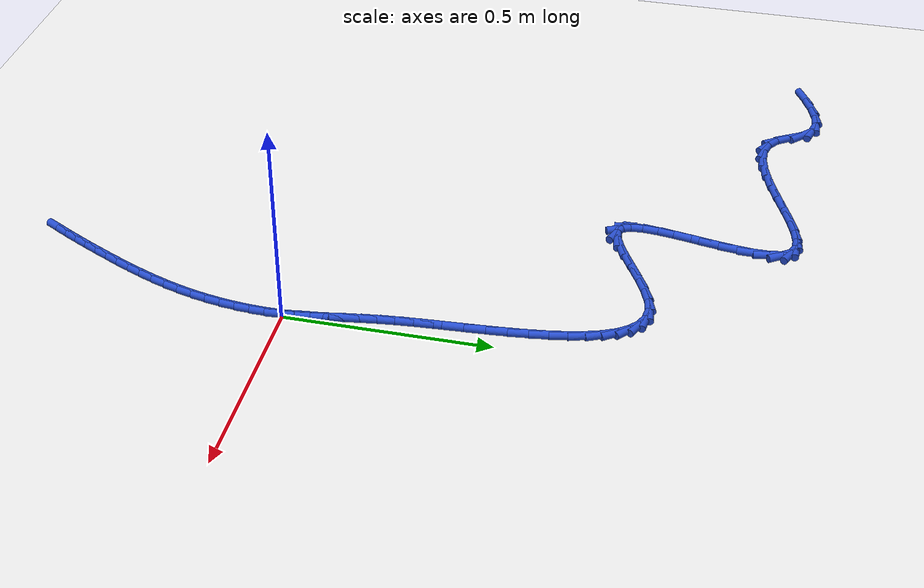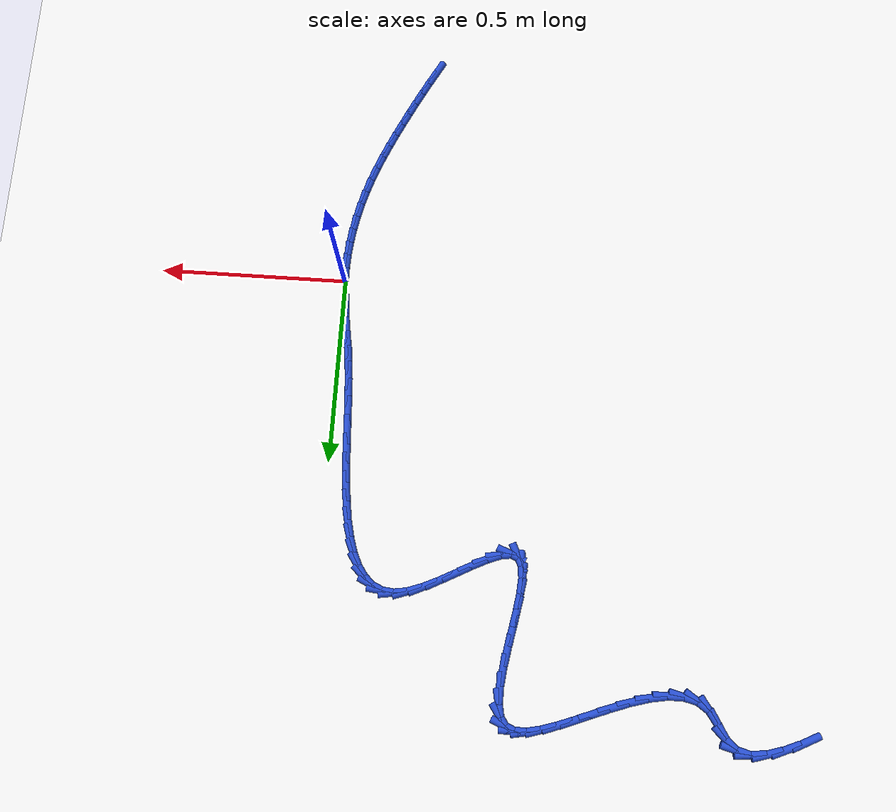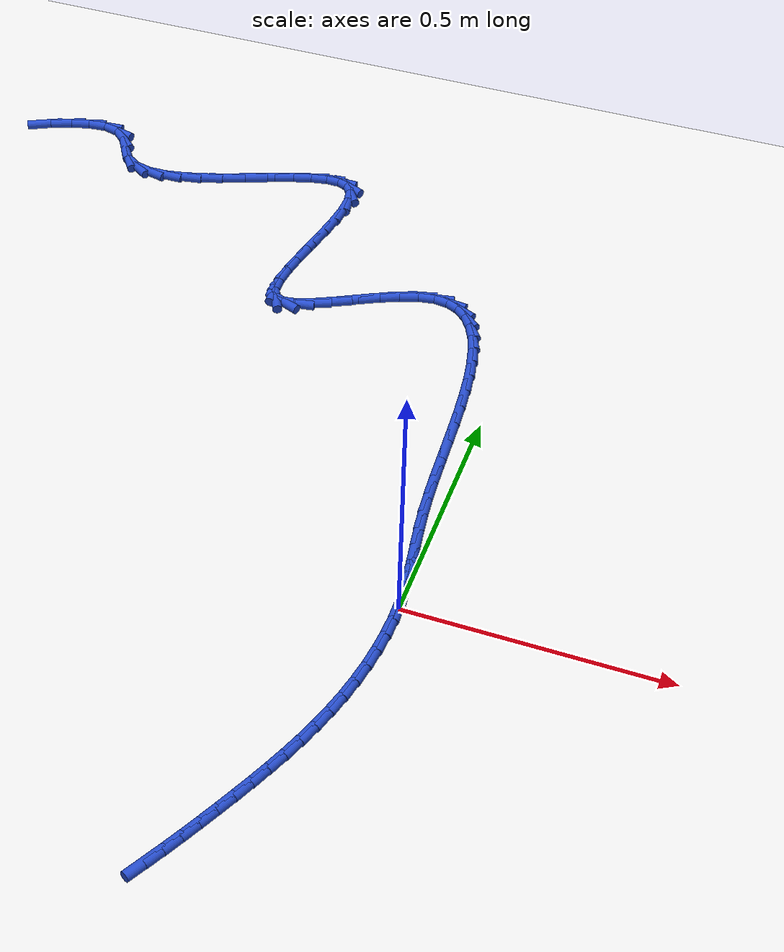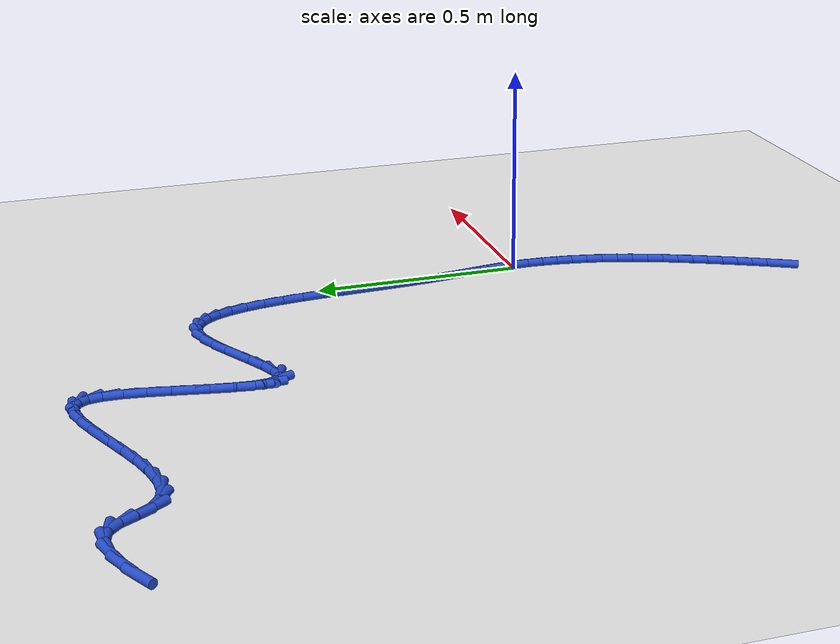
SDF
<sdf version="1.6">
 <world name="default">
  <model name="ground_plane">
   <static>1</static>
   <link name="link">
    <collision name="collision">
     <geometry><plane><normal>0 0 1</normal><size>100 100</size></plane></geometry>
     <surface><friction><ode><mu>100</mu><mu2>50</mu2></ode></friction></surface>
    </collision>
    <visual name="visual">
     <cast_shadows>0</cast_shadows>
     <geometry><plane><normal>0 0 1</normal><size>100 100</size></plane></geometry>
     <material>
      <script><uri>file://media/materials/scripts/gazebo.material</uri><name>Gazebo/WhiteGlow</name></script>
     </material>
    </visual>
   </link>
  </model>
  <model name="line">
   <link name="link_0">
    <pose>-6.938893903907228e-18 1.3877787807814457e-17 0.01 0 1.57 -1.5029490095891989</pose>
    <collision name="collision">
     <geometry><cylinder><radius>0.01</radius><length>0.08</length></cylinder></geometry>
    </collision>
    <visual name="visual">
     <material>
      <script><name>Gazebo/Blue</name><uri>file://media/materials/scripts/gazebo.material</uri></script>
     </material>
     <geometry><cylinder><radius>0.01</radius><length>0.08</length></cylinder></geometry>
    </visual>
   </link>
   <link name="link_1">
    <pose>-0.0024324294258575665 0.035796491488146266 0.01 0 1.57 -1.4581747163771437</pose>
    <collision name="collision">
     <geometry><cylinder><radius>0.01</radius><length>0.08</length></cylinder></geometry>
    </collision>
    <visual name="visual">
     <material>
      <script><name>Gazebo/Blue</name><uri>file://media/materials/scripts/gazebo.material</uri></script>
     </material>
     <geometry><cylinder><radius>0.01</radius><length>0.08</length></cylinder></geometry>
    </visual>
   </link>
   <link name="link_2">
    <pose>-0.006441925883441868 0.07124732937667558 0.01 0 1.57 -1.4291554986315413</pose>
    <collision name="collision">
     <geometry><cylinder><radius>0.01</radius><length>0.08</length></cylinder></geometry>
    </collision>
    <visual name="visual">
     <material>
      <script><name>Gazebo/Blue</name><uri>file://media/materials/scripts/gazebo.material</uri></script>
     </material>
     <geometry><cylinder><radius>0.01</radius><length>0.08</length></cylinder></geometry>
    </visual>
   </link>
   <link name="link_3">
    <pose>-0.01154123499219159 0.10700793941399644 0.01 0 1.57 -1.4167709639370885</pose>
    <collision name="collision">
     <geometry><cylinder><radius>0.01</radius><length>0.08</length></cylinder></geometry>
    </collision>
    <visual name="visual">
     <material>
      <script><name>Gazebo/Blue</name><uri>file://media/materials/scripts/gazebo.material</uri></script>
     </material>
     <geometry><cylinder><radius>0.01</radius><length>0.08</length></cylinder></geometry>
    </visual>
   </link>
   <link name="link_4">
    <pose>-0.01724310237154544 0.14373374734851743 0.01 0 1.57 -1.420243754941917</pose>
    <collision name="collision">
     <geometry><cylinder><radius>0.01</radius><length>0.08</length></cylinder></geometry>
    </collision>
    <visual name="visual">
     <material>
      <script><name>Gazebo/Blue</name><uri>file://media/materials/scripts/gazebo.material</uri></script>
     </material>
     <geometry><cylinder><radius>0.01</radius><length>0.08</length></cylinder></geometry>
    </visual>
   </link>
   <link name="link_5">
    <pose>-0.0230602736409421 0.18208017892864706 0.01 0 1.57 -1.4375460999784744</pose>
    <collision name="collision">
     <geometry><cylinder><radius>0.01</radius><length>0.08</length></cylinder></geometry>
    </collision>
    <visual name="visual">
     <material>
      <script><name>Gazebo/Blue</name><uri>file://media/materials/scripts/gazebo.material</uri></script>
     </material>
     <geometry><cylinder><radius>0.01</radius><length>0.08</length></cylinder></geometry>
    </visual>
   </link>
   <link name="link_6">
    <pose>-0.028505494419820247 0.22270265990279367 0.01 0 1.57 -1.4656498363338808</pose>
    <collision name="collision">
     <geometry><cylinder><radius>0.01</radius><length>0.08</length></cylinder></geometry>
    </collision>
    <visual name="visual">
     <material>
      <script><name>Gazebo/Blue</name><uri>file://media/materials/scripts/gazebo.material</uri></script>
     </material>
     <geometry><cylinder><radius>0.01</radius><length>0.08</length></cylinder></geometry>
    </visual>
   </link>
   <link name="link_7">
    <pose>-0.03310041205159639 0.2662416467459656 0.01 0 1.57 -1.493004079329774</pose>
    <collision name="collision">
     <geometry><cylinder><radius>0.01</radius><length>0.08</length></cylinder></geometry>
    </collision>
    <visual name="visual">
     <material>
      <script><name>Gazebo/Blue</name><uri>file://media/materials/scripts/gazebo.material</uri></script>
     </material>
     <geometry><cylinder><radius>0.01</radius><length>0.08</length></cylinder></geometry>
    </visual>
   </link>
   <link name="link_8">
    <pose>-0.0367246024848403 0.31273569778830096 0.01 0 1.57 -1.5091628321506347</pose>
    <collision name="collision">
     <geometry><cylinder><radius>0.01</radius><length>0.08</length></cylinder></geometry>
    </collision>
    <visual name="visual">
     <material>
      <script><name>Gazebo/Blue</name><uri>file://media/materials/scripts/gazebo.material</uri></script>
     </material>
     <geometry><cylinder><radius>0.01</radius><length>0.08</length></cylinder></geometry>
    </visual>
   </link>
   <link name="link_9">
    <pose>-0.0397295919868771 0.36142973258047373 0.01 0 1.57 -1.5155548807561852</pose>
    <collision name="collision">
     <geometry><cylinder><radius>0.01</radius><length>0.08</length></cylinder></geometry>
    </collision>
    <visual name="visual">
     <material>
      <script><name>Gazebo/Blue</name><uri>file://media/materials/scripts/gazebo.material</uri></script>
     </material>
     <geometry><cylinder><radius>0.01</radius><length>0.08</length></cylinder></geometry>
    </visual>
   </link>
   <link name="link_10">
    <pose>-0.042499160980004204 0.41151443159932294 0.01 0 1.57 -1.513268462693427</pose>
    <collision name="collision">
     <geometry><cylinder><radius>0.01</radius><length>0.08</length></cylinder></geometry>
    </collision>
    <visual name="visual">
     <material>
      <script><name>Gazebo/Blue</name><uri>file://media/materials/scripts/gazebo.material</uri></script>
     </material>
     <geometry><cylinder><radius>0.01</radius><length>0.08</length></cylinder></geometry>
    </visual>
   </link>
   <link name="link_11">
    <pose>-0.045417089886519005 0.4621804753216886 0.01 0 1.57 -1.5025006209556657</pose>
    <collision name="collision">
     <geometry><cylinder><radius>0.01</radius><length>0.08</length></cylinder></geometry>
    </collision>
    <visual name="visual">
     <material>
      <script><name>Gazebo/Blue</name><uri>file://media/materials/scripts/gazebo.material</uri></script>
     </material>
     <geometry><cylinder><radius>0.01</radius><length>0.08</length></cylinder></geometry>
    </visual>
   </link>
   <link name="link_12">
    <pose>-0.04886715912871897 0.5126185442244102 0.01 0 1.57 -1.4826463805374432</pose>
    <collision name="collision">
     <geometry><cylinder><radius>0.01</radius><length>0.08</length></cylinder></geometry>
    </collision>
    <visual name="visual">
     <material>
      <script><name>Gazebo/Blue</name><uri>file://media/materials/scripts/gazebo.material</uri></script>
     </material>
     <geometry><cylinder><radius>0.01</radius><length>0.08</length></cylinder></geometry>
    </visual>
   </link>
   <link name="link_13">
    <pose>-0.05323314912890154 0.5620193187843275 0.01 0 1.57 -1.452213444151717</pose>
    <collision name="collision">
     <geometry><cylinder><radius>0.01</radius><length>0.08</length></cylinder></geometry>
    </collision>
    <visual name="visual">
     <material>
      <script><name>Gazebo/Blue</name><uri>file://media/materials/scripts/gazebo.material</uri></script>
     </material>
     <geometry><cylinder><radius>0.01</radius><length>0.08</length></cylinder></geometry>
    </visual>
   </link>
   <link name="link_14">
    <pose>-0.05889884030936408 0.6095734794782794 0.01 0 1.57 -1.4085499858642958</pose>
    <collision name="collision">
     <geometry><cylinder><radius>0.01</radius><length>0.08</length></cylinder></geometry>
    </collision>
    <visual name="visual">
     <material>
      <script><name>Gazebo/Blue</name><uri>file://media/materials/scripts/gazebo.material</uri></script>
     </material>
     <geometry><cylinder><radius>0.01</radius><length>0.08</length></cylinder></geometry>
    </visual>
   </link>
   <link name="link_15">
    <pose>-0.0662480130924041 0.6544717067831065 0.01 0 1.57 -1.347323174603074</pose>
    <collision name="collision">
     <geometry><cylinder><radius>0.01</radius><length>0.08</length></cylinder></geometry>
    </collision>
    <visual name="visual">
     <material>
      <script><name>Gazebo/Blue</name><uri>file://media/materials/scripts/gazebo.material</uri></script>
     </material>
     <geometry><cylinder><radius>0.01</radius><length>0.08</length></cylinder></geometry>
    </visual>
   </link>
   <link name="link_16">
    <pose>-0.075664447900319 0.6959046811756477 0.01 0 1.57 -1.2616601214778005</pose>
    <collision name="collision">
     <geometry><cylinder><radius>0.01</radius><length>0.08</length></cylinder></geometry>
    </collision>
    <visual name="visual">
     <material>
      <script><name>Gazebo/Blue</name><uri>file://media/materials/scripts/gazebo.material</uri></script>
     </material>
     <geometry><cylinder><radius>0.01</radius><length>0.08</length></cylinder></geometry>
    </visual>
   </link>
   <link name="link_17">
    <pose>-0.08753192515540617 0.7330630831327426 0.01 0 1.57 -1.1409958378339469</pose>
    <collision name="collision">
     <geometry><cylinder><radius>0.01</radius><length>0.08</length></cylinder></geometry>
    </collision>
    <visual name="visual">
     <material>
      <script><name>Gazebo/Blue</name><uri>file://media/materials/scripts/gazebo.material</uri></script>
     </material>
     <geometry><cylinder><radius>0.01</radius><length>0.08</length></cylinder></geometry>
    </visual>
   </link>
   <link name="link_18">
    <pose>-0.10223422527996309 0.7651375931312314 0.01 0 1.57 -0.9705540528261299</pose>
    <collision name="collision">
     <geometry><cylinder><radius>0.01</radius><length>0.08</length></cylinder></geometry>
    </collision>
    <visual name="visual">
     <material>
      <script><name>Gazebo/Blue</name><uri>file://media/materials/scripts/gazebo.material</uri></script>
     </material>
     <geometry><cylinder><radius>0.01</radius><length>0.08</length></cylinder></geometry>
    </visual>
   </link>
   <link name="link_19">
    <pose>-0.12015512869628711 0.7913188916479525 0.01 0 1.57 -0.7355755957059619</pose>
    <collision name="collision">
     <geometry><cylinder><radius>0.01</radius><length>0.08</length></cylinder></geometry>
    </collision>
    <visual name="visual">
     <material>
      <script><name>Gazebo/Blue</name><uri>file://media/materials/scripts/gazebo.material</uri></script>
     </material>
     <geometry><cylinder><radius>0.01</radius><length>0.08</length></cylinder></geometry>
    </visual>
   </link>
   <link name="link_20">
    <pose>-0.14167841582667579 0.8107976591597468 0.01 0 1.57 -0.4386373959741869</pose>
    <collision name="collision">
     <geometry><cylinder><radius>0.01</radius><length>0.08</length></cylinder></geometry>
    </collision>
    <visual name="visual">
     <material>
      <script><name>Gazebo/Blue</name><uri>file://media/materials/scripts/gazebo.material</uri></script>
     </material>
     <geometry><cylinder><radius>0.01</radius><length>0.08</length></cylinder></geometry>
    </visual>
   </link>
   <link name="link_21">
    <pose>-0.16718786709342648 0.8227645761434532 0.01 0 1.57 -0.12141525651706091</pose>
    <collision name="collision">
     <geometry><cylinder><radius>0.01</radius><length>0.08</length></cylinder></geometry>
    </collision>
    <visual name="visual">
     <material>
      <script><name>Gazebo/Blue</name><uri>file://media/materials/scripts/gazebo.material</uri></script>
     </material>
     <geometry><cylinder><radius>0.01</radius><length>0.08</length></cylinder></geometry>
    </visual>
   </link>
   <link name="link_22">
    <pose>-0.19706726291883653 0.8264103230759113 0.01 0 1.57 0.15551919759422433</pose>
    <collision name="collision">
     <geometry><cylinder><radius>0.01</radius><length>0.08</length></cylinder></geometry>
    </collision>
    <visual name="visual">
     <material>
      <script><name>Gazebo/Blue</name><uri>file://media/materials/scripts/gazebo.material</uri></script>
     </material>
     <geometry><cylinder><radius>0.01</radius><length>0.08</length></cylinder></geometry>
    </visual>
   </link>
   <link name="link_23">
    <pose>-0.23166478676584346 0.820985941488289 0.01 0 1.57 0.33773264753974835</pose>
    <collision name="collision">
     <geometry><cylinder><radius>0.01</radius><length>0.08</length></cylinder></geometry>
    </collision>
    <visual name="visual">
     <material>
      <script><name>Gazebo/Blue</name><uri>file://media/materials/scripts/gazebo.material</uri></script>
     </material>
     <geometry><cylinder><radius>0.01</radius><length>0.08</length></cylinder></geometry>
    </visual>
   </link>
   <link name="link_24">
    <pose>-0.2703512929469173 0.8073997104682087 0.01 0 1.57 0.43364230961249856</pose>
    <collision name="collision">
     <geometry><cylinder><radius>0.01</radius><length>0.08</length></cylinder></geometry>
    </collision>
    <visual name="visual">
     <material>
      <script><name>Gazebo/Blue</name><uri>file://media/materials/scripts/gazebo.material</uri></script>
     </material>
     <geometry><cylinder><radius>0.01</radius><length>0.08</length></cylinder></geometry>
    </visual>
   </link>
   <link name="link_25">
    <pose>-0.3114231217208325 0.7883819411626845 0.01 0 1.57 0.4784316106165716</pose>
    <collision name="collision">
     <geometry><cylinder><radius>0.01</radius><length>0.08</length></cylinder></geometry>
    </collision>
    <visual name="visual">
     <material>
      <script><name>Gazebo/Blue</name><uri>file://media/materials/scripts/gazebo.material</uri></script>
     </material>
     <geometry><cylinder><radius>0.01</radius><length>0.08</length></cylinder></geometry>
    </visual>
   </link>
   <link name="link_26">
    <pose>-0.3531215246306627 0.7667563575556949 0.01 0 1.57 0.4856166937264182</pose>
    <collision name="collision">
     <geometry><cylinder><radius>0.01</radius><length>0.08</length></cylinder></geometry>
    </collision>
    <visual name="visual">
     <material>
      <script><name>Gazebo/Blue</name><uri>file://media/materials/scripts/gazebo.material</uri></script>
     </material>
     <geometry><cylinder><radius>0.01</radius><length>0.08</length></cylinder></geometry>
    </visual>
   </link>
   <link name="link_27">
    <pose>-0.39368775321948135 0.7453466836312201 0.01 0 1.57 0.4536690798772381</pose>
    <collision name="collision">
     <geometry><cylinder><radius>0.01</radius><length>0.08</length></cylinder></geometry>
    </collision>
    <visual name="visual">
     <material>
      <script><name>Gazebo/Blue</name><uri>file://media/materials/scripts/gazebo.material</uri></script>
     </material>
     <geometry><cylinder><radius>0.01</radius><length>0.08</length></cylinder></geometry>
    </visual>
   </link>
   <link name="link_28">
    <pose>-0.43136305903036304 0.7269766433732396 0.01 0 1.57 0.3620072377387617</pose>
    <collision name="collision">
     <geometry><cylinder><radius>0.01</radius><length>0.08</length></cylinder></geometry>
    </collision>
    <visual name="visual">
     <material>
      <script><name>Gazebo/Blue</name><uri>file://media/materials/scripts/gazebo.material</uri></script>
     </material>
     <geometry><cylinder><radius>0.01</radius><length>0.08</length></cylinder></geometry>
    </visual>
   </link>
   <link name="link_29">
    <pose>-0.46438869360638063 0.7144699607657328 0.01 0 1.57 0.14252812563000053</pose>
    <collision name="collision">
     <geometry><cylinder><radius>0.01</radius><length>0.08</length></cylinder></geometry>
    </collision>
    <visual name="visual">
     <material>
      <script><name>Gazebo/Blue</name><uri>file://media/materials/scripts/gazebo.material</uri></script>
     </material>
     <geometry><cylinder><radius>0.01</radius><length>0.08</length></cylinder></geometry>
    </visual>
   </link>
   <link name="link_30">
    <pose>-0.49100590849060816 0.7106503597926793 0.01 0 1.57 -0.3937129141649056</pose>
    <collision name="collision">
     <geometry><cylinder><radius>0.01</radius><length>0.08</length></cylinder></geometry>
    </collision>
    <visual name="visual">
     <material>
      <script><name>Gazebo/Blue</name><uri>file://media/materials/scripts/gazebo.material</uri></script>
     </material>
     <geometry><cylinder><radius>0.01</radius><length>0.08</length></cylinder></geometry>
    </visual>
   </link>
   <link name="link_31">
    <pose>-0.5094701226348705 0.7183204283298726 0.01 0 1.57 -1.1211510820049249</pose>
    <collision name="collision">
     <geometry><cylinder><radius>0.01</radius><length>0.08</length></cylinder></geometry>
    </collision>
    <visual name="visual">
     <material>
      <script><name>Gazebo/Blue</name><uri>file://media/materials/scripts/gazebo.material</uri></script>
     </material>
     <geometry><cylinder><radius>0.01</radius><length>0.08</length></cylinder></geometry>
    </visual>
   </link>
   <link name="link_32">
    <pose>-0.5192185936477617 0.7385195899265792 0.01 0 1.57 -1.4887960989691764</pose>
    <collision name="collision">
     <geometry><cylinder><radius>0.01</radius><length>0.08</length></cylinder></geometry>
    </collision>
    <visual name="visual">
     <material>
      <script><name>Gazebo/Blue</name><uri>file://media/materials/scripts/gazebo.material</uri></script>
     </material>
     <geometry><cylinder><radius>0.01</radius><length>0.08</length></cylinder></geometry>
    </visual>
   </link>
   <link name="link_33">
    <pose>-0.521742004190373 0.7692237993759778 0.01 0 1.57 1.4936423378329293</pose>
    <collision name="collision">
     <geometry><cylinder><radius>0.01</radius><length>0.08</length></cylinder></geometry>
    </collision>
    <visual name="visual">
     <material>
      <script><name>Gazebo/Blue</name><uri>file://media/materials/scripts/gazebo.material</uri></script>
     </material>
     <geometry><cylinder><radius>0.01</radius><length>0.08</length></cylinder></geometry>
    </visual>
   </link>
   <link name="link_34">
    <pose>-0.518736378246912 0.8081026663592397 0.01 0 1.57 1.4190611112322715</pose>
    <collision name="collision">
     <geometry><cylinder><radius>0.01</radius><length>0.08</length></cylinder></geometry>
    </collision>
    <visual name="visual">
     <material>
      <script><name>Gazebo/Blue</name><uri>file://media/materials/scripts/gazebo.material</uri></script>
     </material>
     <geometry><cylinder><radius>0.01</radius><length>0.08</length></cylinder></geometry>
    </visual>
   </link>
   <link name="link_35">
    <pose>-0.5118977398015865 0.8528258005575355 0.01 0 1.57 1.38682683542851</pose>
    <collision name="collision">
     <geometry><cylinder><radius>0.01</radius><length>0.08</length></cylinder></geometry>
    </collision>
    <visual name="visual">
     <material>
      <script><name>Gazebo/Blue</name><uri>file://media/materials/scripts/gazebo.material</uri></script>
     </material>
     <geometry><cylinder><radius>0.01</radius><length>0.08</length></cylinder></geometry>
    </visual>
   </link>
   <link name="link_36">
    <pose>-0.502922112838605 0.9010628116520373 0.01 0 1.57 1.3825130540014907</pose>
    <collision name="collision">
     <geometry><cylinder><radius>0.01</radius><length>0.08</length></cylinder></geometry>
    </collision>
    <visual name="visual">
     <material>
      <script><name>Gazebo/Blue</name><uri>file://media/materials/scripts/gazebo.material</uri></script>
     </material>
     <geometry><cylinder><radius>0.01</radius><length>0.08</length></cylinder></geometry>
    </visual>
   </link>
   <link name="link_37">
    <pose>-0.4935055213421753 0.9504833093239153 0.01 0 1.57 1.4033118876343589</pose>
    <collision name="collision">
     <geometry><cylinder><radius>0.01</radius><length>0.08</length></cylinder></geometry>
    </collision>
    <visual name="visual">
     <material>
      <script><name>Gazebo/Blue</name><uri>file://media/materials/scripts/gazebo.material</uri></script>
     </material>
     <geometry><cylinder><radius>0.01</radius><length>0.08</length></cylinder></geometry>
    </visual>
   </link>
   <link name="link_38">
    <pose>-0.48534398929650524 0.9987569032543417 0.01 0 1.57 1.455002385339137</pose>
    <collision name="collision">
     <geometry><cylinder><radius>0.01</radius><length>0.08</length></cylinder></geometry>
    </collision>
    <visual name="visual">
     <material>
      <script><name>Gazebo/Blue</name><uri>file://media/materials/scripts/gazebo.material</uri></script>
     </material>
     <geometry><cylinder><radius>0.01</radius><length>0.08</length></cylinder></geometry>
    </visual>
   </link>
   <link name="link_39">
    <pose>-0.48013354068580283 1.0435532031244874 0.01 0 1.57 1.5563484684523539</pose>
    <collision name="collision">
     <geometry><cylinder><radius>0.01</radius><length>0.08</length></cylinder></geometry>
    </collision>
    <visual name="visual">
     <material>
      <script><name>Gazebo/Blue</name><uri>file://media/materials/scripts/gazebo.material</uri></script>
     </material>
     <geometry><cylinder><radius>0.01</radius><length>0.08</length></cylinder></geometry>
    </visual>
   </link>
   <link name="link_40">
    <pose>-0.4795701994942762 1.0825418186155233 0.01 0 1.57 -1.385595121645287</pose>
    <collision name="collision">
     <geometry><cylinder><radius>0.01</radius><length>0.08</length></cylinder></geometry>
    </collision>
    <visual name="visual">
     <material>
      <script><name>Gazebo/Blue</name><uri>file://media/materials/scripts/gazebo.material</uri></script>
     </material>
     <geometry><cylinder><radius>0.01</radius><length>0.08</length></cylinder></geometry>
    </visual>
   </link>
   <link name="link_41">
    <pose>-0.48534998970613336 1.113392359408621 0.01 0 1.57 -0.9777811911724729</pose>
    <collision name="collision">
     <geometry><cylinder><radius>0.01</radius><length>0.08</length></cylinder></geometry>
    </collision>
    <visual name="visual">
     <material>
      <script><name>Gazebo/Blue</name><uri>file://media/materials/scripts/gazebo.material</uri></script>
     </material>
     <geometry><cylinder><radius>0.01</radius><length>0.08</length></cylinder></geometry>
    </visual>
   </link>
   <link name="link_42">
    <pose>-0.49912662661353785 1.1338345563181706 0.01 0 1.57 -0.4091905115053014</pose>
    <collision name="collision">
     <geometry><cylinder><radius>0.01</radius><length>0.08</length></cylinder></geometry>
    </collision>
    <visual name="visual">
     <material>
      <script><name>Gazebo/Blue</name><uri>file://media/materials/scripts/gazebo.material</uri></script>
     </material>
     <geometry><cylinder><radius>0.01</radius><length>0.08</length></cylinder></geometry>
    </visual>
   </link>
   <link name="link_43">
    <pose>-0.5212619214378263 1.1434339505557993 0.01 0 1.57 -0.015383986659590978</pose>
    <collision name="collision">
     <geometry><cylinder><radius>0.01</radius><length>0.08</length></cylinder></geometry>
    </collision>
    <visual name="visual">
     <material>
      <script><name>Gazebo/Blue</name><uri>file://media/materials/scripts/gazebo.material</uri></script>
     </material>
     <geometry><cylinder><radius>0.01</radius><length>0.08</length></cylinder></geometry>
    </visual>
   </link>
   <link name="link_44">
    <pose>-0.5506190816360831 1.1438856163486846 0.01 0 1.57 0.19222493038312605</pose>
    <collision name="collision">
     <geometry><cylinder><radius>0.01</radius><length>0.08</length></cylinder></geometry>
    </collision>
    <visual name="visual">
     <material>
      <script><name>Gazebo/Blue</name><uri>file://media/materials/scripts/gazebo.material</uri></script>
     </material>
     <geometry><cylinder><radius>0.01</radius><length>0.08</length></cylinder></geometry>
    </visual>
   </link>
   <link name="link_45">
    <pose>-0.5859773803668158 1.1370038995181515 0.01 0 1.57 0.29964514804853004</pose>
    <collision name="collision">
     <geometry><cylinder><radius>0.01</radius><length>0.08</length></cylinder></geometry>
    </collision>
    <visual name="visual">
     <material>
      <script><name>Gazebo/Blue</name><uri>file://media/materials/scripts/gazebo.material</uri></script>
     </material>
     <geometry><cylinder><radius>0.01</radius><length>0.08</length></cylinder></geometry>
    </visual>
   </link>
   <link name="link_46">
    <pose>-0.6261160907885323 1.1246031458855246 0.01 0 1.57 0.35311199952206024</pose>
    <collision name="collision">
     <geometry><cylinder><radius>0.01</radius><length>0.08</length></cylinder></geometry>
    </collision>
    <visual name="visual">
     <material>
      <script><name>Gazebo/Blue</name><uri>file://media/materials/scripts/gazebo.material</uri></script>
     </material>
     <geometry><cylinder><radius>0.01</radius><length>0.08</length></cylinder></geometry>
    </visual>
   </link>
   <link name="link_47">
    <pose>-0.6698144860597397 1.1084977012721287 0.01 0 1.57 0.37263303045988466</pose>
    <collision name="collision">
     <geometry><cylinder><radius>0.01</radius><length>0.08</length></cylinder></geometry>
    </collision>
    <visual name="visual">
     <material>
      <script><name>Gazebo/Blue</name><uri>file://media/materials/scripts/gazebo.material</uri></script>
     </material>
     <geometry><cylinder><radius>0.01</radius><length>0.08</length></cylinder></geometry>
    </visual>
   </link>
   <link name="link_48">
    <pose>-0.7158518393389465 1.0905019114992887 0.01 0 1.57 0.3659729729368808</pose>
    <collision name="collision">
     <geometry><cylinder><radius>0.01</radius><length>0.08</length></cylinder></geometry>
    </collision>
    <visual name="visual">
     <material>
      <script><name>Gazebo/Blue</name><uri>file://media/materials/scripts/gazebo.material</uri></script>
     </material>
     <geometry><cylinder><radius>0.01</radius><length>0.08</length></cylinder></geometry>
    </visual>
   </link>
   <link name="link_49">
    <pose>-0.7630074237846595 1.0724301223883286 0.01 0 1.57 0.33411391972943194</pose>
    <collision name="collision">
     <geometry><cylinder><radius>0.01</radius><length>0.08</length></cylinder></geometry>
    </collision>
    <visual name="visual">
     <material>
      <script><name>Gazebo/Blue</name><uri>file://media/materials/scripts/gazebo.material</uri></script>
     </material>
     <geometry><cylinder><radius>0.01</radius><length>0.08</length></cylinder></geometry>
    </visual>
   </link>
   <link name="link_50">
    <pose>-0.8100605125553867 1.0560966797605735 0.01 0 1.57 0.27252983559960847</pose>
    <collision name="collision">
     <geometry><cylinder><radius>0.01</radius><length>0.08</length></cylinder></geometry>
    </collision>
    <visual name="visual">
     <material>
      <script><name>Gazebo/Blue</name><uri>file://media/materials/scripts/gazebo.material</uri></script>
     </material>
     <geometry><cylinder><radius>0.01</radius><length>0.08</length></cylinder></geometry>
    </visual>
   </link>
   <link name="link_51">
    <pose>-0.855790378809636 1.0433159294373486 0.01 0 1.57 0.17001248220391646</pose>
    <collision name="collision">
     <geometry><cylinder><radius>0.01</radius><length>0.08</length></cylinder></geometry>
    </collision>
    <visual name="visual">
     <material>
      <script><name>Gazebo/Blue</name><uri>file://media/materials/scripts/gazebo.material</uri></script>
     </material>
     <geometry><cylinder><radius>0.01</radius><length>0.08</length></cylinder></geometry>
    </visual>
   </link>
   <link name="link_52">
    <pose>-0.8989762957059144 1.0359022172399777 0.01 0 1.57 0.0058934106668151656</pose>
    <collision name="collision">
     <geometry><cylinder><radius>0.01</radius><length>0.08</length></cylinder></geometry>
    </collision>
    <visual name="visual">
     <material>
      <script><name>Gazebo/Blue</name><uri>file://media/materials/scripts/gazebo.material</uri></script>
     </material>
     <geometry><cylinder><radius>0.01</radius><length>0.08</length></cylinder></geometry>
    </visual>
   </link>
   <link name="link_53">
    <pose>-0.9383975364027298 1.0356698889897857 0.01 0 1.57 -0.24919529305724566</pose>
    <collision name="collision">
     <geometry><cylinder><radius>0.01</radius><length>0.08</length></cylinder></geometry>
    </collision>
    <visual name="visual">
     <material>
      <script><name>Gazebo/Blue</name><uri>file://media/materials/scripts/gazebo.material</uri></script>
     </material>
     <geometry><cylinder><radius>0.01</radius><length>0.08</length></cylinder></geometry>
    </visual>
   </link>
   <link name="link_54">
    <pose>-0.9728333740585905 1.0444332905080982 0.01 0 1.57 -0.6062587097577087</pose>
    <collision name="collision">
     <geometry><cylinder><radius>0.01</radius><length>0.08</length></cylinder></geometry>
    </collision>
    <visual name="visual">
     <material>
      <script><name>Gazebo/Blue</name><uri>file://media/materials/scripts/gazebo.material</uri></script>
     </material>
     <geometry><cylinder><radius>0.01</radius><length>0.08</length></cylinder></geometry>
    </visual>
   </link>
   <link name="link_55">
    <pose>-1.0010630818320032 1.0640067676162384 0.01 0 1.57 -0.959277237569955</pose>
    <collision name="collision">
     <geometry><cylinder><radius>0.01</radius><length>0.08</length></cylinder></geometry>
    </collision>
    <visual name="visual">
     <material>
      <script><name>Gazebo/Blue</name><uri>file://media/materials/scripts/gazebo.material</uri></script>
     </material>
     <geometry><cylinder><radius>0.01</radius><length>0.08</length></cylinder></geometry>
    </visual>
   </link>
   <link name="link_56">
    <pose>-1.0226874596790703 1.0948466424547614 0.01 0 1.57 -1.034687938574385</pose>
    <collision name="collision">
     <geometry><cylinder><radius>0.01</radius><length>0.08</length></cylinder></geometry>
    </collision>
    <visual name="visual">
     <material>
      <script><name>Gazebo/Blue</name><uri>file://media/materials/scripts/gazebo.material</uri></script>
     </material>
     <geometry><cylinder><radius>0.01</radius><length>0.08</length></cylinder></geometry>
    </visual>
   </link>
   <link name="link_57">
    <pose>-1.042689714047884 1.1285118579222166 0.01 0 1.57 -0.7680621147179204</pose>
    <collision name="collision">
     <geometry><cylinder><radius>0.01</radius><length>0.08</length></cylinder></geometry>
    </collision>
    <visual name="visual">
     <material>
      <script><name>Gazebo/Blue</name><uri>file://media/materials/scripts/gazebo.material</uri></script>
     </material>
     <geometry><cylinder><radius>0.01</radius><length>0.08</length></cylinder></geometry>
    </visual>
   </link>
   <link name="link_58">
    <pose>-1.0681449423753462 1.1530994544807123 0.01 0 1.57 -0.2675079446141565</pose>
    <collision name="collision">
     <geometry><cylinder><radius>0.01</radius><length>0.08</length></cylinder></geometry>
    </collision>
    <visual name="visual">
     <material>
      <script><name>Gazebo/Blue</name><uri>file://media/materials/scripts/gazebo.material</uri></script>
     </material>
     <geometry><cylinder><radius>0.01</radius><length>0.08</length></cylinder></geometry>
    </visual>
   </link>
   <link name="link_59">
    <pose>-1.1024997097435514 1.1625153076003214 0.01 0 1.57 0.0852445513349359</pose>
    <collision name="collision">
     <geometry><cylinder><radius>0.01</radius><length>0.08</length></cylinder></geometry>
    </collision>
    <visual name="visual">
     <material>
      <script><name>Gazebo/Blue</name><uri>file://media/materials/scripts/gazebo.material</uri></script>
     </material>
     <geometry><cylinder><radius>0.01</radius><length>0.08</length></cylinder></geometry>
    </visual>
   </link>
   <link name="link_60">
    <pose>-1.1440146408572283 1.1589677889188155 0.01 0 1.57 0.2856217911963571</pose>
    <collision name="collision">
     <geometry><cylinder><radius>0.01</radius><length>0.08</length></cylinder></geometry>
    </collision>
    <visual name="visual">
     <material>
      <script><name>Gazebo/Blue</name><uri>file://media/materials/scripts/gazebo.material</uri></script>
     </material>
     <geometry><cylinder><radius>0.01</radius><length>0.08</length></cylinder></geometry>
    </visual>
   </link>
   <link name="link_61">
    <pose>-1.1905527481908416 1.1453018323515494 0.01 0 1.57 0.400741339856995</pose>
    <collision name="collision">
     <geometry><cylinder><radius>0.01</radius><length>0.08</length></cylinder></geometry>
    </collision>
    <visual name="visual">
     <material>
      <script><name>Gazebo/Blue</name><uri>file://media/materials/scripts/gazebo.material</uri></script>
     </material>
     <geometry><cylinder><radius>0.01</radius><length>0.08</length></cylinder></geometry>
    </visual>
   </link>
   <link name="link_62">
    <pose>-1.2399770442188545 1.1243623718138767 0.01 0 1.57 0.46812249363446756</pose>
    <collision name="collision">
     <geometry><cylinder><radius>0.01</radius><length>0.08</length></cylinder></geometry>
    </collision>
    <visual name="visual">
     <material>
      <script><name>Gazebo/Blue</name><uri>file://media/materials/scripts/gazebo.material</uri></script>
     </material>
     <geometry><cylinder><radius>0.01</radius><length>0.08</length></cylinder></geometry>
    </visual>
   </link>
   <link name="link_232">
    <pose>-0.20325743135569876 -0.6376745505250737 0.01 0 1.57 1.0741444399190516</pose>
    <collision name="collision">
     <geometry><cylinder><radius>0.01</radius><length>0.08</length></cylinder></geometry>
    </collision>
    <visual name="visual">
     <material>
      <script><name>Gazebo/Blue</name><uri>file://media/materials/scripts/gazebo.material</uri></script>
     </material>
     <geometry><cylinder><radius>0.01</radius><length>0.08</length></cylinder></geometry>
    </visual>
   </link>
   <link name="link_233">
    <pose>-0.18601284961219725 -0.6058558107496976 0.01 0 1.57 1.088469703479206</pose>
    <collision name="collision">
     <geometry><cylinder><radius>0.01</radius><length>0.08</length></cylinder></geometry>
    </collision>
    <visual name="visual">
     <material>
      <script><name>Gazebo/Blue</name><uri>file://media/materials/scripts/gazebo.material</uri></script>
     </material>
     <geometry><cylinder><radius>0.01</radius><length>0.08</length></cylinder></geometry>
    </visual>
   </link>
   <link name="link_234">
    <pose>-0.16915779177880377 -0.5736633541745352 0.01 0 1.57 1.1014097961355702</pose>
    <collision name="collision">
     <geometry><cylinder><radius>0.01</radius><length>0.08</length></cylinder></geometry>
    </collision>
    <visual name="visual">
     <material>
      <script><name>Gazebo/Blue</name><uri>file://media/materials/scripts/gazebo.material</uri></script>
     </material>
     <geometry><cylinder><radius>0.01</radius><length>0.08</length></cylinder></geometry>
    </visual>
   </link>
   <link name="link_235">
    <pose>-0.1526307012957807 -0.5410780352187936 0.01 0 1.57 1.1129351172861703</pose>
    <collision name="collision">
     <geometry><cylinder><radius>0.01</radius><length>0.08</length></cylinder></geometry>
    </collision>
    <visual name="visual">
     <material>
      <script><name>Gazebo/Blue</name><uri>file://media/materials/scripts/gazebo.material</uri></script>
     </material>
     <geometry><cylinder><radius>0.01</radius><length>0.08</length></cylinder></geometry>
    </visual>
   </link>
   <link name="link_236">
    <pose>-0.13637002160339035 -0.5080807083016803 0.01 0 1.57 1.1230401197725541</pose>
    <collision name="collision">
     <geometry><cylinder><radius>0.01</radius><length>0.08</length></cylinder></geometry>
    </collision>
    <visual name="visual">
     <material>
      <script><name>Gazebo/Blue</name><uri>file://media/materials/scripts/gazebo.material</uri></script>
     </material>
     <geometry><cylinder><radius>0.01</radius><length>0.08</length></cylinder></geometry>
    </visual>
   </link>
   <link name="link_237">
    <pose>-0.12031462177110125 -0.4746522032778608 0.01 0 1.57 1.1336710911355652</pose>
    <collision name="collision">
     <geometry><cylinder><radius>0.01</radius><length>0.08</length></cylinder></geometry>
    </collision>
    <visual name="visual">
     <material>
      <script><name>Gazebo/Blue</name><uri>file://media/materials/scripts/gazebo.material</uri></script>
     </material>
     <geometry><cylinder><radius>0.01</radius><length>0.08</length></cylinder></geometry>
    </visual>
   </link>
   <link name="link_238">
    <pose>-0.10448182075635463 -0.44076882238622267 0.01 0 1.57 1.1490067751534103</pose>
    <collision name="collision">
     <geometry><cylinder><radius>0.01</radius><length>0.08</length></cylinder></geometry>
    </collision>
    <visual name="visual">
     <material>
      <script><name>Gazebo/Blue</name><uri>file://media/materials/scripts/gazebo.material</uri></script>
     </material>
     <geometry><cylinder><radius>0.01</radius><length>0.08</length></cylinder></geometry>
    </visual>
   </link>
   <link name="link_239">
    <pose>-0.08905850897274577 -0.406397081307375 0.01 0 1.57 1.1695449376540277</pose>
    <collision name="collision">
     <geometry><cylinder><radius>0.01</radius><length>0.08</length></cylinder></geometry>
    </collision>
    <visual name="visual">
     <material>
      <script><name>Gazebo/Blue</name><uri>file://media/materials/scripts/gazebo.material</uri></script>
     </material>
     <geometry><cylinder><radius>0.01</radius><length>0.08</length></cylinder></geometry>
    </visual>
   </link>
   <link name="link_240">
    <pose>-0.07425369784693911 -0.3715022190413571 0.01 0 1.57 1.1952553217967365</pose>
    <collision name="collision">
     <geometry><cylinder><radius>0.01</radius><length>0.08</length></cylinder></geometry>
    </collision>
    <visual name="visual">
     <material>
      <script><name>Gazebo/Blue</name><uri>file://media/materials/scripts/gazebo.material</uri></script>
     </material>
     <geometry><cylinder><radius>0.01</radius><length>0.08</length></cylinder></geometry>
    </visual>
   </link>
   <link name="link_241">
    <pose>-0.06027639880559794 -0.33604947458820483 0.01 0 1.57 1.2261144675387656</pose>
    <collision name="collision">
     <geometry><cylinder><radius>0.01</radius><length>0.08</length></cylinder></geometry>
    </collision>
    <visual name="visual">
     <material>
      <script><name>Gazebo/Blue</name><uri>file://media/materials/scripts/gazebo.material</uri></script>
     </material>
     <geometry><cylinder><radius>0.01</radius><length>0.08</length></cylinder></geometry>
    </visual>
   </link>
   <link name="link_242">
    <pose>-0.047335623275386714 -0.3000040869479571 0.01 0 1.57 1.2620844131271671</pose>
    <collision name="collision">
     <geometry><cylinder><radius>0.01</radius><length>0.08</length></cylinder></geometry>
    </collision>
    <visual name="visual">
     <material>
      <script><name>Gazebo/Blue</name><uri>file://media/materials/scripts/gazebo.material</uri></script>
     </material>
     <geometry><cylinder><radius>0.01</radius><length>0.08</length></cylinder></geometry>
    </visual>
   </link>
   <link name="link_243">
    <pose>-0.0356403826829695 -0.263331295120652 0.01 0 1.57 1.302895875172886</pose>
    <collision name="collision">
     <geometry><cylinder><radius>0.01</radius><length>0.08</length></cylinder></geometry>
    </collision>
    <visual name="visual">
     <material>
      <script><name>Gazebo/Blue</name><uri>file://media/materials/scripts/gazebo.material</uri></script>
     </material>
     <geometry><cylinder><radius>0.01</radius><length>0.08</length></cylinder></geometry>
    </visual>
   </link>
   <link name="link_244">
    <pose>-0.025394905043403793 -0.22600702586400132 0.01 0 1.57 1.3457951049364498</pose>
    <collision name="collision">
     <geometry><cylinder><radius>0.01</radius><length>0.08</length></cylinder></geometry>
    </collision>
    <visual name="visual">
     <material>
      <script><name>Gazebo/Blue</name><uri>file://media/materials/scripts/gazebo.material</uri></script>
     </material>
     <geometry><cylinder><radius>0.01</radius><length>0.08</length></cylinder></geometry>
    </visual>
   </link>
   <link name="link_245">
    <pose>-0.016733426377401665 -0.1881635916988964 0.01 0 1.57 1.3892434245368093</pose>
    <collision name="collision">
     <geometry><cylinder><radius>0.01</radius><length>0.08</length></cylinder></geometry>
    </collision>
    <visual name="visual">
     <material>
      <script><name>Gazebo/Blue</name><uri>file://media/materials/scripts/gazebo.material</uri></script>
     </material>
     <geometry><cylinder><radius>0.01</radius><length>0.08</length></cylinder></geometry>
    </visual>
   </link>
   <link name="link_246">
    <pose>-0.009737100557168333 -0.15005190860056658 0.01 0 1.57 1.4339213607283832</pose>
    <collision name="collision">
     <geometry><cylinder><radius>0.01</radius><length>0.08</length></cylinder></geometry>
    </collision>
    <visual name="visual">
     <material>
      <script><name>Gazebo/Blue</name><uri>file://media/materials/scripts/gazebo.material</uri></script>
     </material>
     <geometry><cylinder><radius>0.01</radius><length>0.08</length></cylinder></geometry>
    </visual>
   </link>
   <link name="link_247">
    <pose>-0.00448576129600765 -0.11192584222526195 0.01 0 1.57 1.4806002303402197</pose>
    <collision name="collision">
     <geometry><cylinder><radius>0.01</radius><length>0.08</length></cylinder></geometry>
    </collision>
    <visual name="visual">
     <material>
      <script><name>Gazebo/Blue</name><uri>file://media/materials/scripts/gazebo.material</uri></script>
     </material>
     <geometry><cylinder><radius>0.01</radius><length>0.08</length></cylinder></geometry>
    </visual>
   </link>
   <link name="link_248">
    <pose>-0.001059242307223466 -0.07403925822923259 0.01 0 1.57 1.5301198374797933</pose>
    <collision name="collision">
     <geometry><cylinder><radius>0.01</radius><length>0.08</length></cylinder></geometry>
    </collision>
    <visual name="visual">
     <material>
      <script><name>Gazebo/Blue</name><uri>file://media/materials/scripts/gazebo.material</uri></script>
     </material>
     <geometry><cylinder><radius>0.01</radius><length>0.08</length></cylinder></geometry>
    </visual>
   </link>
   <link name="link_249">
    <pose>0.0004626226958803648 -0.036646022268728554 0.01 0 1.57 -1.5581729070103592</pose>
    <collision name="collision">
     <geometry><cylinder><radius>0.01</radius><length>0.08</length></cylinder></geometry>
    </collision>
    <visual name="visual">
     <material>
      <script><name>Gazebo/Blue</name><uri>file://media/materials/scripts/gazebo.material</uri></script>
     </material>
     <geometry><cylinder><radius>0.01</radius><length>0.08</length></cylinder></geometry>
    </visual>
   </link>
   <link name="link_250">
    <pose>-5.204170427930421e-18 9.71445146547012e-17 0.01 0 1.57 -1.5000226514638628</pose>
    <collision name="collision">
     <geometry><cylinder><radius>0.01</radius><length>0.08</length></cylinder></geometry>
    </collision>
    <visual name="visual">
     <material>
      <script><name>Gazebo/Blue</name><uri>file://media/materials/scripts/gazebo.material</uri></script>
     </material>
     <geometry><cylinder><radius>0.01</radius><length>0.08</length></cylinder></geometry>
    </visual>
   </link>
   <link name="link_251">
    <pose>-0.0025269441081684323 0.03564494292070329 0.01 0 1.57 -1.435795233783639</pose>
    <collision name="collision">
     <geometry><cylinder><radius>0.01</radius><length>0.08</length></cylinder></geometry>
    </collision>
    <visual name="visual">
     <material>
      <script><name>Gazebo/Blue</name><uri>file://media/materials/scripts/gazebo.material</uri></script>
     </material>
     <geometry><cylinder><radius>0.01</radius><length>0.08</length></cylinder></geometry>
    </visual>
   </link>
   <link name="link_252">
    <pose>-0.007198043341928771 0.07003494083713097 0.01 0 1.57 -1.4683780528125812</pose>
    <collision name="collision">
     <geometry><cylinder><radius>0.01</radius><length>0.08</length></cylinder></geometry>
    </collision>
    <visual name="visual">
     <material>
      <script><name>Gazebo/Blue</name><uri>file://media/materials/scripts/gazebo.material</uri></script>
     </material>
     <geometry><cylinder><radius>0.01</radius><length>0.08</length></cylinder></geometry>
    </visual>
   </link>
  </model>
 </world>
</sdf>
